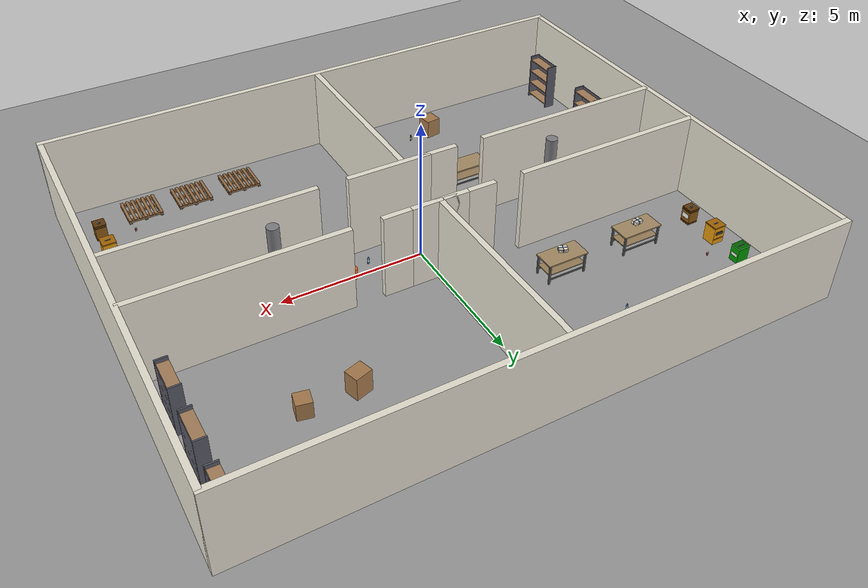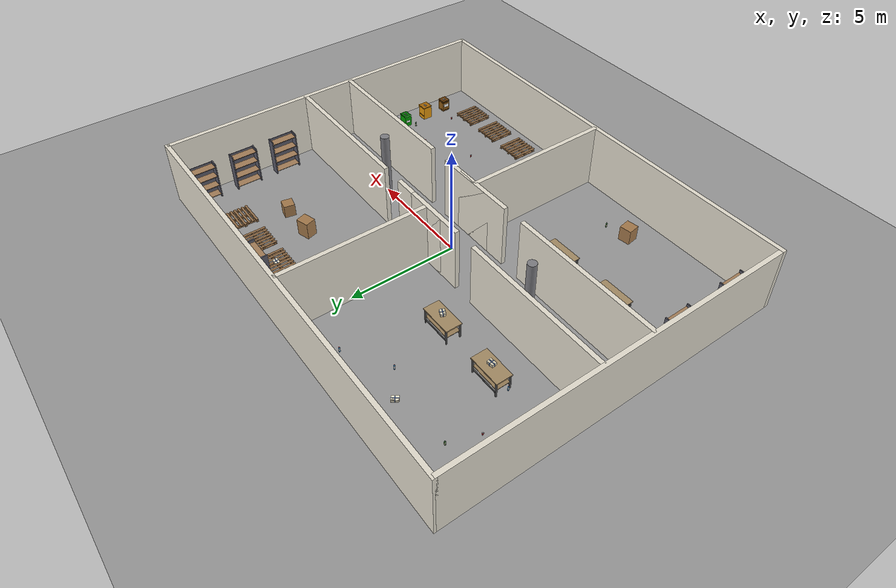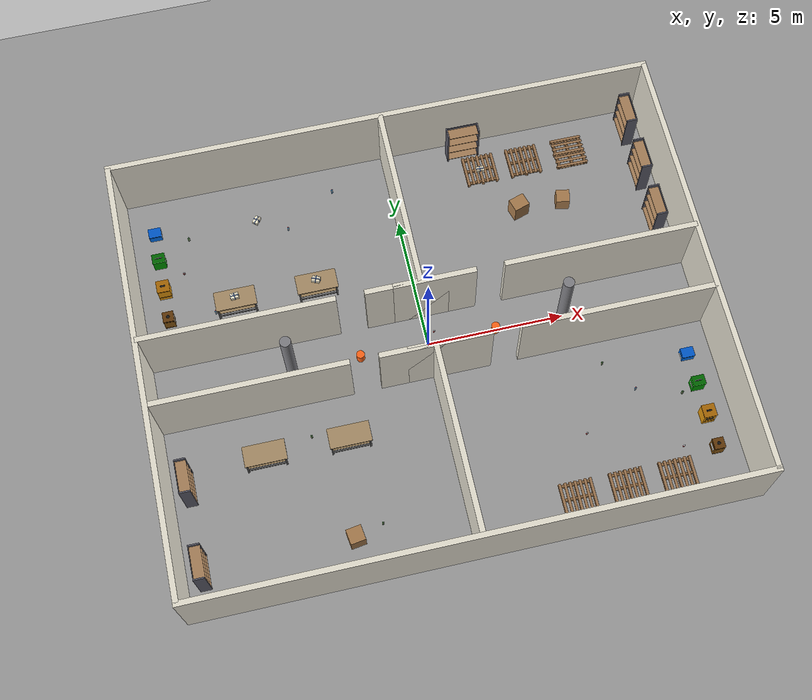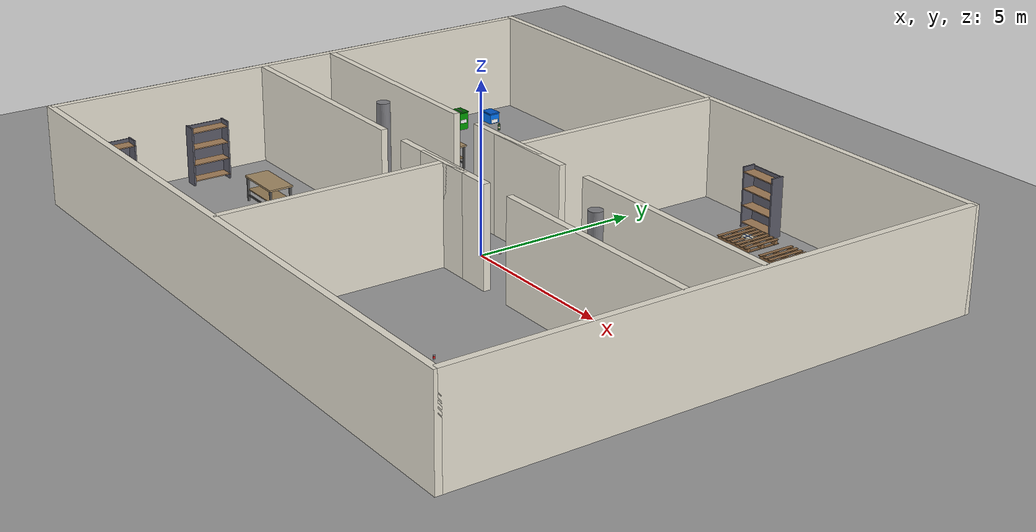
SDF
<sdf version="1.8">
 <world name="facility">
  <gravity>0 0 -9.81</gravity>
  <physics name="default_physics" type="ode">
   <max_step_size>0.001</max_step_size>
   <real_time_factor>1.0</real_time_factor>
   <real_time_update_rate>1000</real_time_update_rate>
   <ode><solver><type>quick</type><iters>50</iters></solver></ode>
  </physics>
  <plugin filename="gz-sim-physics-system" name="gz::sim::systems::Physics"/>
  <plugin filename="gz-sim-scene-broadcaster-system" name="gz::sim::systems::SceneBroadcaster"/>
  <plugin filename="gz-sim-user-commands-system" name="gz::sim::systems::UserCommands"/>
  <plugin filename="gz-sim-sensors-system" name="gz::sim::systems::Sensors">
   <render_engine>ogre2</render_engine>
  </plugin>
  <plugin filename="gz-sim-contact-system" name="gz::sim::systems::Contact"/>
  <scene><ambient>0.5 0.5 0.5 1</ambient><background>0.7 0.8 0.9 1</background><shadows>true</shadows></scene>
  <light type="directional" name="sun">
   <pose>0 0 15 0 0 0</pose>
   <diffuse>0.9 0.9 0.9 1</diffuse>
   <specular>0.2 0.2 0.2 1</specular>
   <direction>-0.4 0.2 -0.9</direction>
  </light>
  <light type="point" name="ceiling_light_1">
   <pose>-6 -3 3.5 0 0 0</pose>
   <diffuse>0.7 0.7 0.65 1</diffuse>
   <specular>0.1 0.1 0.1 1</specular>
   <attenuation>
    <range>10</range>
    <linear>0.1</linear>
    <constant>0.4</constant>
    <quadratic>0.01</quadratic>
   </attenuation>
  </light>
  <light type="point" name="ceiling_light_2">
   <pose>6 -3 3.5 0 0 0</pose>
   <diffuse>0.7 0.7 0.65 1</diffuse>
   <specular>0.1 0.1 0.1 1</specular>
   <attenuation>
    <range>10</range>
    <linear>0.1</linear>
    <constant>0.4</constant>
    <quadratic>0.01</quadratic>
   </attenuation>
  </light>
  <light type="point" name="ceiling_light_3">
   <pose>0 5 3.5 0 0 0</pose>
   <diffuse>0.7 0.7 0.65 1</diffuse>
   <specular>0.1 0.1 0.1 1</specular>
   <attenuation>
    <range>10</range>
    <linear>0.1</linear>
    <constant>0.4</constant>
    <quadratic>0.01</quadratic>
   </attenuation>
  </light>
  <model name="ground_plane">
   <static>true</static>
   <link name="link">
    <collision name="collision">
     <geometry><plane><normal>0 0 1</normal><size>100 100</size></plane></geometry>
     <surface><friction><ode><mu>0.9</mu><mu2>0.9</mu2></ode></friction></surface>
    </collision>
    <visual name="visual">
     <geometry><plane><normal>0 0 1</normal><size>100 100</size></plane></geometry>
     <material>
      <ambient>0.55 0.55 0.55 1</ambient>
      <diffuse>0.6 0.6 0.6 1</diffuse>
      <specular>0.1 0.1 0.1 1</specular>
     </material>
    </visual>
   </link>
  </model>
  <model name="wall_north">
   <static>true</static>
   <pose>0 8 1.5 0 0 0</pose>
   <link name="link">
    <collision name="collision"><geometry><box><size>20.2 0.2 3.0</size></box></geometry></collision>
    <visual name="visual">
     <geometry><box><size>20.2 0.2 3.0</size></box></geometry>
     <material><ambient>0.85 0.83 0.78 1</ambient><diffuse>0.9 0.88 0.82 1</diffuse></material>
    </visual>
   </link>
  </model>
  <model name="wall_south">
   <static>true</static>
   <pose>0 -8 1.5 0 0 0</pose>
   <link name="link">
    <collision name="collision"><geometry><box><size>20.2 0.2 3.0</size></box></geometry></collision>
    <visual name="visual">
     <geometry><box><size>20.2 0.2 3.0</size></box></geometry>
     <material><ambient>0.85 0.83 0.78 1</ambient><diffuse>0.9 0.88 0.82 1</diffuse></material>
    </visual>
   </link>
  </model>
  <model name="wall_east">
   <static>true</static>
   <pose>10 0 1.5 0 0 0</pose>
   <link name="link">
    <collision name="collision"><geometry><box><size>0.2 16.0 3.0</size></box></geometry></collision>
    <visual name="visual">
     <geometry><box><size>0.2 16.0 3.0</size></box></geometry>
     <material><ambient>0.85 0.83 0.78 1</ambient><diffuse>0.9 0.88 0.82 1</diffuse></material>
    </visual>
   </link>
  </model>
  <model name="wall_west">
   <static>true</static>
   <pose>-10 0 1.5 0 0 0</pose>
   <link name="link">
    <collision name="collision"><geometry><box><size>0.2 16.0 3.0</size></box></geometry></collision>
    <visual name="visual">
     <geometry><box><size>0.2 16.0 3.0</size></box></geometry>
     <material><ambient>0.85 0.83 0.78 1</ambient><diffuse>0.9 0.88 0.82 1</diffuse></material>
    </visual>
   </link>
  </model>
  <model name="wall_interior_north">
   <static>true</static>
   <pose>0 4.6 1.5 0 0 0</pose>
   <link name="link">
    <collision name="collision"><geometry><box><size>0.2 6.8 3.0</size></box></geometry></collision>
    <visual name="visual">
     <geometry><box><size>0.2 6.8 3.0</size></box></geometry>
     <material><ambient>0.85 0.83 0.78 1</ambient><diffuse>0.9 0.88 0.82 1</diffuse></material>
    </visual>
   </link>
  </model>
  <model name="wall_interior_south">
   <static>true</static>
   <pose>0 -4.6 1.5 0 0 0</pose>
   <link name="link">
    <collision name="collision"><geometry><box><size>0.2 6.8 3.0</size></box></geometry></collision>
    <visual name="visual">
     <geometry><box><size>0.2 6.8 3.0</size></box></geometry>
     <material><ambient>0.85 0.83 0.78 1</ambient><diffuse>0.9 0.88 0.82 1</diffuse></material>
    </visual>
   </link>
  </model>
  <model name="wall_hallway_nw_a">
   <static>true</static>
   <pose>-6.5 1.2 1.5 0 0 0</pose>
   <link name="link">
    <collision name="collision"><geometry><box><size>7.0 0.2 3.0</size></box></geometry></collision>
    <visual name="visual">
     <geometry><box><size>7.0 0.2 3.0</size></box></geometry>
     <material><ambient>0.85 0.83 0.78 1</ambient><diffuse>0.9 0.88 0.82 1</diffuse></material>
    </visual>
   </link>
  </model>
  <model name="wall_hallway_nw_b">
   <static>true</static>
   <pose>-0.5 1.2 1.5 0 0 0</pose>
   <link name="link">
    <collision name="collision"><geometry><box><size>3.0 0.2 3.0</size></box></geometry></collision>
    <visual name="visual">
     <geometry><box><size>3.0 0.2 3.0</size></box></geometry>
     <material><ambient>0.85 0.83 0.78 1</ambient><diffuse>0.9 0.88 0.82 1</diffuse></material>
    </visual>
   </link>
  </model>
  <model name="wall_hallway_ne_a">
   <static>true</static>
   <pose>0.5 1.2 1.5 0 0 0</pose>
   <link name="link">
    <collision name="collision"><geometry><box><size>3.0 0.2 3.0</size></box></geometry></collision>
    <visual name="visual">
     <geometry><box><size>3.0 0.2 3.0</size></box></geometry>
     <material><ambient>0.85 0.83 0.78 1</ambient><diffuse>0.9 0.88 0.82 1</diffuse></material>
    </visual>
   </link>
  </model>
  <model name="wall_hallway_ne_b">
   <static>true</static>
   <pose>6.5 1.2 1.5 0 0 0</pose>
   <link name="link">
    <collision name="collision"><geometry><box><size>7.0 0.2 3.0</size></box></geometry></collision>
    <visual name="visual">
     <geometry><box><size>7.0 0.2 3.0</size></box></geometry>
     <material><ambient>0.85 0.83 0.78 1</ambient><diffuse>0.9 0.88 0.82 1</diffuse></material>
    </visual>
   </link>
  </model>
  <model name="wall_hallway_sw_a">
   <static>true</static>
   <pose>-6.5 -1.2 1.5 0 0 0</pose>
   <link name="link">
    <collision name="collision"><geometry><box><size>7.0 0.2 3.0</size></box></geometry></collision>
    <visual name="visual">
     <geometry><box><size>7.0 0.2 3.0</size></box></geometry>
     <material><ambient>0.85 0.83 0.78 1</ambient><diffuse>0.9 0.88 0.82 1</diffuse></material>
    </visual>
   </link>
  </model>
  <model name="wall_hallway_sw_b">
   <static>true</static>
   <pose>-0.5 -1.2 1.5 0 0 0</pose>
   <link name="link">
    <collision name="collision"><geometry><box><size>3.0 0.2 3.0</size></box></geometry></collision>
    <visual name="visual">
     <geometry><box><size>3.0 0.2 3.0</size></box></geometry>
     <material><ambient>0.85 0.83 0.78 1</ambient><diffuse>0.9 0.88 0.82 1</diffuse></material>
    </visual>
   </link>
  </model>
  <model name="wall_hallway_se_a">
   <static>true</static>
   <pose>0.5 -1.2 1.5 0 0 0</pose>
   <link name="link">
    <collision name="collision"><geometry><box><size>3.0 0.2 3.0</size></box></geometry></collision>
    <visual name="visual">
     <geometry><box><size>3.0 0.2 3.0</size></box></geometry>
     <material><ambient>0.85 0.83 0.78 1</ambient><diffuse>0.9 0.88 0.82 1</diffuse></material>
    </visual>
   </link>
  </model>
  <model name="wall_hallway_se_b">
   <static>true</static>
   <pose>6.5 -1.2 1.5 0 0 0</pose>
   <link name="link">
    <collision name="collision"><geometry><box><size>7.0 0.2 3.0</size></box></geometry></collision>
    <visual name="visual">
     <geometry><box><size>7.0 0.2 3.0</size></box></geometry>
     <material><ambient>0.85 0.83 0.78 1</ambient><diffuse>0.9 0.88 0.82 1</diffuse></material>
    </visual>
   </link>
  </model>
  <include><name>shelf_ne_1</name><pose>9.3 3.0 0 0 0 1.5708</pose><uri>model://industrial_shelf</uri></include>
  <include><name>shelf_ne_2</name><pose>9.3 5.0 0 0 0 1.5708</pose><uri>model://industrial_shelf</uri></include>
  <include><name>shelf_ne_3</name><pose>9.3 7.0 0 0 0 1.5708</pose><uri>model://industrial_shelf</uri></include>
  <include><name>shelf_ne_4</name><pose>3.0 7.4 0 0 0 3.1416</pose><uri>model://industrial_shelf</uri></include>
  <include>
   <name>shelf_sw_1</name>
   <pose>-9.3 -3.5 0 0 0 -1.5708</pose>
   <uri>model://industrial_shelf</uri>
  </include>
  <include>
   <name>shelf_sw_2</name>
   <pose>-9.3 -6.5 0 0 0 -1.5708</pose>
   <uri>model://industrial_shelf</uri>
  </include>
  <include><name>pallet_storage_1</name><pose>3.5 6.5 0.075 0 0 0</pose><uri>model://pallet</uri></include>
  <include><name>pallet_storage_2</name><pose>5.2 6.5 0.075 0 0 0</pose><uri>model://pallet</uri></include>
  <include><name>pallet_storage_3</name><pose>7.0 6.5 0.075 0 0 1.5708</pose><uri>model://pallet</uri></include>
  <include><name>pallet_dock_1</name><pose>3.8 -6.8 0.075 0 0 0</pose><uri>model://pallet</uri></include>
  <include><name>pallet_dock_2</name><pose>5.6 -6.8 0.075 0 0 0</pose><uri>model://pallet</uri></include>
  <include><name>pallet_dock_3</name><pose>7.4 -6.8 0.075 0 0 0</pose><uri>model://pallet</uri></include>
  <include><name>work_table_sorting_1</name><pose>-6.5 3.0 0 0 0 0</pose><uri>model://work_table</uri></include>
  <include><name>work_table_sorting_2</name><pose>-3.5 3.0 0 0 0 0</pose><uri>model://work_table</uri></include>
  <include>
   <name>work_table_processing_1</name>
   <pose>-6.5 -3.0 0 0 0 0</pose>
   <uri>model://work_table</uri>
  </include>
  <include>
   <name>work_table_processing_2</name>
   <pose>-3.5 -3.0 0 0 0 0</pose>
   <uri>model://work_table</uri>
  </include>
  <include><name>plastic_bin_sorting</name><pose>-9.0 6.5 0 0 0 0</pose><uri>model://plastic_bin</uri></include>
  <include><name>paper_bin_sorting</name><pose>-9.0 5.3 0 0 0 0</pose><uri>model://paper_bin</uri></include>
  <include><name>metal_bin_sorting</name><pose>-9.0 4.1 0 0 0 0</pose><uri>model://metal_bin</uri></include>
  <include><name>glass_bin_sorting</name><pose>-9.0 2.9 0 0 0 0</pose><uri>model://glass_bin</uri></include>
  <include>
   <name>plastic_bin_dock</name>
   <pose>9.0 -2.5 0 0 0 3.14159</pose>
   <uri>model://plastic_bin</uri>
  </include>
  <include><name>paper_bin_dock</name><pose>9.0 -3.7 0 0 0 3.14159</pose><uri>model://paper_bin</uri></include>
  <include><name>metal_bin_dock</name><pose>9.0 -4.9 0 0 0 3.14159</pose><uri>model://metal_bin</uri></include>
  <include><name>glass_bin_dock</name><pose>9.0 -6.1 0 0 0 3.14159</pose><uri>model://glass_bin</uri></include>
  <model name="box_stack_1">
   <static>true</static>
   <pose>4.5 4.5 0.4 0 0 0.3</pose>
   <link name="link">
    <collision name="collision"><geometry><box><size>0.6 0.5 0.8</size></box></geometry></collision>
    <visual name="visual">
     <geometry><box><size>0.6 0.5 0.8</size></box></geometry>
     <material><ambient>0.55 0.4 0.25 1</ambient><diffuse>0.65 0.48 0.3 1</diffuse></material>
    </visual>
   </link>
  </model>
  <model name="box_stack_2">
   <static>true</static>
   <pose>6.2 4.5 0.3 0 0 -0.2</pose>
   <link name="link">
    <collision name="collision"><geometry><box><size>0.5 0.5 0.6</size></box></geometry></collision>
    <visual name="visual">
     <geometry><box><size>0.5 0.5 0.6</size></box></geometry>
     <material><ambient>0.55 0.4 0.25 1</ambient><diffuse>0.65 0.48 0.3 1</diffuse></material>
    </visual>
   </link>
  </model>
  <model name="box_stack_3">
   <static>true</static>
   <pose>-4.0 -6.5 0.35 0 0 0.15</pose>
   <link name="link">
    <collision name="collision"><geometry><box><size>0.55 0.55 0.7</size></box></geometry></collision>
    <visual name="visual">
     <geometry><box><size>0.55 0.55 0.7</size></box></geometry>
     <material><ambient>0.55 0.4 0.25 1</ambient><diffuse>0.65 0.48 0.3 1</diffuse></material>
    </visual>
   </link>
  </model>
  <model name="traffic_cone_1">
   <static>true</static>
   <pose>-2.5 0 0.2 0 0 0</pose>
   <link name="link">
    <collision name="collision">
     <geometry><cylinder><radius>0.15</radius><length>0.4</length></cylinder></geometry>
    </collision>
    <visual name="visual">
     <geometry><cylinder><radius>0.15</radius><length>0.4</length></cylinder></geometry>
     <material><ambient>0.9 0.35 0.05 1</ambient><diffuse>1.0 0.4 0.1 1</diffuse></material>
    </visual>
   </link>
  </model>
  <model name="traffic_cone_2">
   <static>true</static>
   <pose>2.5 0 0.2 0 0 0</pose>
   <link name="link">
    <collision name="collision">
     <geometry><cylinder><radius>0.15</radius><length>0.4</length></cylinder></geometry>
    </collision>
    <visual name="visual">
     <geometry><cylinder><radius>0.15</radius><length>0.4</length></cylinder></geometry>
     <material><ambient>0.9 0.35 0.05 1</ambient><diffuse>1.0 0.4 0.1 1</diffuse></material>
    </visual>
   </link>
  </model>
  <model name="support_pillar_1">
   <static>true</static>
   <pose>-5 0 1.5 0 0 0</pose>
   <link name="link">
    <collision name="collision">
     <geometry><cylinder><radius>0.2</radius><length>3.0</length></cylinder></geometry>
    </collision>
    <visual name="visual">
     <geometry><cylinder><radius>0.2</radius><length>3.0</length></cylinder></geometry>
     <material><ambient>0.4 0.4 0.42 1</ambient><diffuse>0.5 0.5 0.52 1</diffuse></material>
    </visual>
   </link>
  </model>
  <model name="support_pillar_2">
   <static>true</static>
   <pose>5 0 1.5 0 0 0</pose>
   <link name="link">
    <collision name="collision">
     <geometry><cylinder><radius>0.2</radius><length>3.0</length></cylinder></geometry>
    </collision>
    <visual name="visual">
     <geometry><cylinder><radius>0.2</radius><length>3.0</length></cylinder></geometry>
     <material><ambient>0.4 0.4 0.42 1</ambient><diffuse>0.5 0.5 0.52 1</diffuse></material>
    </visual>
   </link>
  </model>
  <include>
   <name>plastic_bottle_1</name>
   <pose>-7.3 2.85 0.12 0 0 0.5</pose>
   <uri>model://plastic_bottle</uri>
  </include>
  <include>
   <name>plastic_bottle_2</name>
   <pose>-4.1 5.6 0.12 0 0 1.2</pose>
   <uri>model://plastic_bottle</uri>
  </include>
  <include>
   <name>plastic_bottle_3</name>
   <pose>-2.2 6.8 0.12 0 0 -0.3</pose>
   <uri>model://plastic_bottle</uri>
  </include>
  <include>
   <name>plastic_bottle_4</name>
   <pose>1.8 -0.3 0.12 0 0 2.1</pose>
   <uri>model://plastic_bottle</uri>
  </include>
  <include>
   <name>plastic_bottle_5</name>
   <pose>6.8 -3.4 0.12 0 0 0.8</pose>
   <uri>model://plastic_bottle</uri>
  </include>
  <include>
   <name>paper_bundle_1</name>
   <pose>-6.5 3.0 0.95 0 0 0.1</pose>
   <uri>model://paper_bundle</uri>
  </include>
  <include>
   <name>paper_bundle_2</name>
   <pose>-3.5 3.0 0.95 0 0 -0.4</pose>
   <uri>model://paper_bundle</uri>
  </include>
  <include>
   <name>paper_bundle_3</name>
   <pose>-5.2 6.3 0.08 0 0 0.9</pose>
   <uri>model://paper_bundle</uri>
  </include>
  <include><name>paper_bundle_4</name><pose>3.5 6.5 0.18 0 0 0.0</pose><uri>model://paper_bundle</uri></include>
  <include><name>metal_can_1</name><pose>-8.2 4.7 0.06 0 0 0.6</pose><uri>model://metal_can</uri></include>
  <include><name>metal_can_2</name><pose>-3.8 2.4 0.06 0 0 -1.1</pose><uri>model://metal_can</uri></include>
  <include><name>metal_can_3</name><pose>0.3 0.4 0.06 0 0 1.9</pose><uri>model://metal_can</uri></include>
  <include><name>metal_can_4</name><pose>4.7 -4.6 0.06 0 0 0.3</pose><uri>model://metal_can</uri></include>
  <include><name>metal_can_5</name><pose>7.9 -5.8 0.06 0 0 -0.7</pose><uri>model://metal_can</uri></include>
  <include>
   <name>glass_bottle_1</name>
   <pose>-7.8 6.0 0.13 0 0 0.4</pose>
   <uri>model://glass_bottle</uri>
  </include>
  <include>
   <name>glass_bottle_2</name>
   <pose>-4.8 -2.6 0.13 0 0 -0.5</pose>
   <uri>model://glass_bottle</uri>
  </include>
  <include>
   <name>glass_bottle_3</name>
   <pose>-3.0 -6.2 0.13 0 0 1.4</pose>
   <uri>model://glass_bottle</uri>
  </include>
  <include>
   <name>glass_bottle_4</name>
   <pose>5.9 -2.2 0.13 0 0 0.2</pose>
   <uri>model://glass_bottle</uri>
  </include>
  <include>
   <name>glass_bottle_5</name>
   <pose>8.4 -3.9 0.13 0 0 -1.6</pose>
   <uri>model://glass_bottle</uri>
  </include>
  <model name="render_confirm_cam">
   <static>true</static>
   <pose>3 0 2 0 0.34 3.14159</pose>
   <link name="link">
    <sensor type="camera" name="render_confirm_camera">
     <topic>/render_confirm/camera</topic>
     <always_on>1</always_on>
     <update_rate>30</update_rate>
     <camera>
      <horizontal_fov>1.0472</horizontal_fov>
      <image><width>800</width><height>600</height><format>R8G8B8</format></image>
      <clip><near>0.05</near><far>100</far></clip>
     </camera>
    </sensor>
   </link>
  </model>
 </world>
</sdf>

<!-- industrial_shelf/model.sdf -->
<sdf version="1.8">
  <model name="industrial_shelf">
    <static>true</static>
    <link name="link">

      <!-- Left vertical post -->
      <visual name="post_left">
        <pose>-0.58 0 0.9 0 0 0</pose>
        <geometry><box><size>0.05 0.4 1.8</size></box></geometry>
        <material>
          <ambient>0.25 0.25 0.28 1</ambient>
          <diffuse>0.35 0.35 0.4 1</diffuse>
          <specular>0.4 0.4 0.45 1</specular>
        </material>
      </visual>
      <collision name="post_left_col">
        <pose>-0.58 0 0.9 0 0 0</pose>
        <geometry><box><size>0.05 0.4 1.8</size></box></geometry>
      </collision>

      <!-- Right vertical post -->
      <visual name="post_right">
        <pose>0.58 0 0.9 0 0 0</pose>
        <geometry><box><size>0.05 0.4 1.8</size></box></geometry>
        <material>
          <ambient>0.25 0.25 0.28 1</ambient>
          <diffuse>0.35 0.35 0.4 1</diffuse>
          <specular>0.4 0.4 0.45 1</specular>
        </material>
      </visual>
      <collision name="post_right_col">
        <pose>0.58 0 0.9 0 0 0</pose>
        <geometry><box><size>0.05 0.4 1.8</size></box></geometry>
      </collision>

      <!-- Shelf 1 (bottom) -->
      <visual name="shelf_1">
        <pose>0 0 0.15 0 0 0</pose>
        <geometry><box><size>1.2 0.4 0.03</size></box></geometry>
        <material>
          <ambient>0.5 0.4 0.3 1</ambient>
          <diffuse>0.65 0.5 0.35 1</diffuse>
        </material>
      </visual>
      <collision name="shelf_1_col">
        <pose>0 0 0.15 0 0 0</pose>
        <geometry><box><size>1.2 0.4 0.03</size></box></geometry>
      </collision>

      <!-- Shelf 2 -->
      <visual name="shelf_2">
        <pose>0 0 0.65 0 0 0</pose>
        <geometry><box><size>1.2 0.4 0.03</size></box></geometry>
        <material>
          <ambient>0.5 0.4 0.3 1</ambient>
          <diffuse>0.65 0.5 0.35 1</diffuse>
        </material>
      </visual>
      <collision name="shelf_2_col">
        <pose>0 0 0.65 0 0 0</pose>
        <geometry><box><size>1.2 0.4 0.03</size></box></geometry>
      </collision>

      <!-- Shelf 3 -->
      <visual name="shelf_3">
        <pose>0 0 1.15 0 0 0</pose>
        <geometry><box><size>1.2 0.4 0.03</size></box></geometry>
        <material>
          <ambient>0.5 0.4 0.3 1</ambient>
          <diffuse>0.65 0.5 0.35 1</diffuse>
        </material>
      </visual>
      <collision name="shelf_3_col">
        <pose>0 0 1.15 0 0 0</pose>
        <geometry><box><size>1.2 0.4 0.03</size></box></geometry>
      </collision>

      <!-- Shelf 4 (top) -->
      <visual name="shelf_4">
        <pose>0 0 1.65 0 0 0</pose>
        <geometry><box><size>1.2 0.4 0.03</size></box></geometry>
        <material>
          <ambient>0.5 0.4 0.3 1</ambient>
          <diffuse>0.65 0.5 0.35 1</diffuse>
        </material>
      </visual>
      <collision name="shelf_4_col">
        <pose>0 0 1.65 0 0 0</pose>
        <geometry><box><size>1.2 0.4 0.03</size></box></geometry>
      </collision>

      <!-- Back cross brace -->
      <visual name="back_brace">
        <pose>0 -0.19 0.9 0 0 0</pose>
        <geometry><box><size>1.16 0.02 1.75</size></box></geometry>
        <material>
          <ambient>0.25 0.25 0.28 1</ambient>
          <diffuse>0.35 0.35 0.4 1</diffuse>
        </material>
      </visual>
      <collision name="back_brace_col">
        <pose>0 -0.19 0.9 0 0 0</pose>
        <geometry><box><size>1.16 0.02 1.75</size></box></geometry>
      </collision>

      <!-- Inertial (static, but required) -->
      <inertial>
        <mass>30.0</mass>
        <inertia>
          <ixx>10.0</ixx><iyy>10.0</iyy><izz>5.0</izz>
          <ixy>0</ixy><ixz>0</ixz><iyz>0</iyz>
        </inertia>
      </inertial>

    </link>
  </model>
</sdf>

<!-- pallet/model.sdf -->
<sdf version="1.8">
  <model name="pallet">
    <static>true</static>
    <link name="link">
      <inertial>
        <mass>20.0</mass>
        <inertia>
          <ixx>1.2</ixx><iyy>1.5</iyy><izz>2.5</izz>
          <ixy>0</ixy><ixz>0</ixz><iyz>0</iyz>
        </inertia>
      </inertial>

      <!-- Top deck boards (7 planks along X) -->
      <visual name="top_1"><pose>-0.55 0 0.13 0 0 0</pose><geometry><box><size>0.1 1.2 0.02</size></box></geometry><material><ambient>0.55 0.4 0.25 1</ambient><diffuse>0.6 0.45 0.3 1</diffuse></material></visual>
      <visual name="top_2"><pose>-0.36 0 0.13 0 0 0</pose><geometry><box><size>0.1 1.2 0.02</size></box></geometry><material><ambient>0.55 0.4 0.25 1</ambient><diffuse>0.6 0.45 0.3 1</diffuse></material></visual>
      <visual name="top_3"><pose>-0.18 0 0.13 0 0 0</pose><geometry><box><size>0.1 1.2 0.02</size></box></geometry><material><ambient>0.55 0.4 0.25 1</ambient><diffuse>0.6 0.45 0.3 1</diffuse></material></visual>
      <visual name="top_4"><pose>0 0 0.13 0 0 0</pose><geometry><box><size>0.1 1.2 0.02</size></box></geometry><material><ambient>0.55 0.4 0.25 1</ambient><diffuse>0.6 0.45 0.3 1</diffuse></material></visual>
      <visual name="top_5"><pose>0.18 0 0.13 0 0 0</pose><geometry><box><size>0.1 1.2 0.02</size></box></geometry><material><ambient>0.55 0.4 0.25 1</ambient><diffuse>0.6 0.45 0.3 1</diffuse></material></visual>
      <visual name="top_6"><pose>0.36 0 0.13 0 0 0</pose><geometry><box><size>0.1 1.2 0.02</size></box></geometry><material><ambient>0.55 0.4 0.25 1</ambient><diffuse>0.6 0.45 0.3 1</diffuse></material></visual>
      <visual name="top_7"><pose>0.55 0 0.13 0 0 0</pose><geometry><box><size>0.1 1.2 0.02</size></box></geometry><material><ambient>0.55 0.4 0.25 1</ambient><diffuse>0.6 0.45 0.3 1</diffuse></material></visual>

      <!-- Cross stringers (3 blocks along Y) -->
      <visual name="stringer_l"><pose>0 -0.5 0.07 0 0 0</pose><geometry><box><size>1.2 0.1 0.1</size></box></geometry><material><ambient>0.5 0.35 0.2 1</ambient><diffuse>0.55 0.4 0.25 1</diffuse></material></visual>
      <visual name="stringer_c"><pose>0 0 0.07 0 0 0</pose><geometry><box><size>1.2 0.1 0.1</size></box></geometry><material><ambient>0.5 0.35 0.2 1</ambient><diffuse>0.55 0.4 0.25 1</diffuse></material></visual>
      <visual name="stringer_r"><pose>0 0.5 0.07 0 0 0</pose><geometry><box><size>1.2 0.1 0.1</size></box></geometry><material><ambient>0.5 0.35 0.2 1</ambient><diffuse>0.55 0.4 0.25 1</diffuse></material></visual>

      <!-- Bottom boards -->
      <visual name="bot_1"><pose>-0.55 0 0.01 0 0 0</pose><geometry><box><size>0.1 1.2 0.02</size></box></geometry><material><ambient>0.5 0.35 0.2 1</ambient><diffuse>0.55 0.4 0.25 1</diffuse></material></visual>
      <visual name="bot_2"><pose>0 0 0.01 0 0 0</pose><geometry><box><size>0.1 1.2 0.02</size></box></geometry><material><ambient>0.5 0.35 0.2 1</ambient><diffuse>0.55 0.4 0.25 1</diffuse></material></visual>
      <visual name="bot_3"><pose>0.55 0 0.01 0 0 0</pose><geometry><box><size>0.1 1.2 0.02</size></box></geometry><material><ambient>0.5 0.35 0.2 1</ambient><diffuse>0.55 0.4 0.25 1</diffuse></material></visual>

      <!-- Simplified collision: single box enclosing the pallet volume -->
      <collision name="collision">
        <pose>0 0 0.07 0 0 0</pose>
        <geometry><box><size>1.2 1.2 0.14</size></box></geometry>
        <surface><friction><ode><mu>0.9</mu><mu2>0.9</mu2></ode></friction></surface>
      </collision>
    </link>
  </model>
</sdf>

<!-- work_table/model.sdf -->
<sdf version="1.8">
  <model name="work_table">
    <static>true</static>
    <link name="link">

      <!-- Tabletop -->
      <visual name="tabletop_visual">
        <pose>0 0 0.75 0 0 0</pose>
        <geometry>
          <box><size>1.5 0.75 0.05</size></box>
        </geometry>
        <material>
          <ambient>0.6 0.5 0.35 1</ambient>
          <diffuse>0.65 0.55 0.4 1</diffuse>
          <specular>0.1 0.1 0.1 1</specular>
        </material>
      </visual>
      <collision name="tabletop_collision">
        <pose>0 0 0.75 0 0 0</pose>
        <geometry>
          <box><size>1.5 0.75 0.05</size></box>
        </geometry>
      </collision>

      <!-- Leg front-left -->
      <visual name="leg_fl_visual">
        <pose>-0.68 -0.32 0.36 0 0 0</pose>
        <geometry>
          <box><size>0.06 0.06 0.72</size></box>
        </geometry>
        <material>
          <ambient>0.3 0.3 0.3 1</ambient>
          <diffuse>0.35 0.35 0.35 1</diffuse>
        </material>
      </visual>
      <collision name="leg_fl_collision">
        <pose>-0.68 -0.32 0.36 0 0 0</pose>
        <geometry>
          <box><size>0.06 0.06 0.72</size></box>
        </geometry>
      </collision>

      <!-- Leg front-right -->
      <visual name="leg_fr_visual">
        <pose>0.68 -0.32 0.36 0 0 0</pose>
        <geometry>
          <box><size>0.06 0.06 0.72</size></box>
        </geometry>
        <material>
          <ambient>0.3 0.3 0.3 1</ambient>
          <diffuse>0.35 0.35 0.35 1</diffuse>
        </material>
      </visual>
      <collision name="leg_fr_collision">
        <pose>0.68 -0.32 0.36 0 0 0</pose>
        <geometry>
          <box><size>0.06 0.06 0.72</size></box>
        </geometry>
      </collision>

      <!-- Leg rear-left -->
      <visual name="leg_rl_visual">
        <pose>-0.68 0.32 0.36 0 0 0</pose>
        <geometry>
          <box><size>0.06 0.06 0.72</size></box>
        </geometry>
        <material>
          <ambient>0.3 0.3 0.3 1</ambient>
          <diffuse>0.35 0.35 0.35 1</diffuse>
        </material>
      </visual>
      <collision name="leg_rl_collision">
        <pose>-0.68 0.32 0.36 0 0 0</pose>
        <geometry>
          <box><size>0.06 0.06 0.72</size></box>
        </geometry>
      </collision>

      <!-- Leg rear-right -->
      <visual name="leg_rr_visual">
        <pose>0.68 0.32 0.36 0 0 0</pose>
        <geometry>
          <box><size>0.06 0.06 0.72</size></box>
        </geometry>
        <material>
          <ambient>0.3 0.3 0.3 1</ambient>
          <diffuse>0.35 0.35 0.35 1</diffuse>
        </material>
      </visual>
      <collision name="leg_rr_collision">
        <pose>0.68 0.32 0.36 0 0 0</pose>
        <geometry>
          <box><size>0.06 0.06 0.72</size></box>
        </geometry>
      </collision>

      <!-- Lower shelf -->
      <visual name="lower_shelf_visual">
        <pose>0 0 0.35 0 0 0</pose>
        <geometry>
          <box><size>1.38 0.63 0.03</size></box>
        </geometry>
        <material>
          <ambient>0.55 0.45 0.3 1</ambient>
          <diffuse>0.6 0.5 0.35 1</diffuse>
        </material>
      </visual>
      <collision name="lower_shelf_collision">
        <pose>0 0 0.35 0 0 0</pose>
        <geometry>
          <box><size>1.38 0.63 0.03</size></box>
        </geometry>
      </collision>

      <!-- Front cross-brace -->
      <visual name="brace_front_visual">
        <pose>0 -0.32 0.18 0 0 0</pose>
        <geometry>
          <box><size>1.38 0.04 0.04</size></box>
        </geometry>
        <material>
          <ambient>0.3 0.3 0.3 1</ambient>
          <diffuse>0.35 0.35 0.35 1</diffuse>
        </material>
      </visual>

      <!-- Rear cross-brace -->
      <visual name="brace_rear_visual">
        <pose>0 0.32 0.18 0 0 0</pose>
        <geometry>
          <box><size>1.38 0.04 0.04</size></box>
        </geometry>
        <material>
          <ambient>0.3 0.3 0.3 1</ambient>
          <diffuse>0.35 0.35 0.35 1</diffuse>
        </material>
      </visual>

    </link>
  </model>
</sdf>

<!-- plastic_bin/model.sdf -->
<sdf version="1.8">
  <model name="plastic_bin">
    <static>true</static>
    <link name="link">
      <!-- Bin body -->
      <collision name="body_collision">
        <geometry>
          <box><size>0.45 0.35 0.55</size></box>
        </geometry>
      </collision>
      <visual name="body_visual">
        <geometry>
          <box><size>0.45 0.35 0.55</size></box>
        </geometry>
        <material>
          <ambient>0.0 0.4 0.9 1</ambient>
          <diffuse>0.0 0.45 0.95 1</diffuse>
          <specular>0.1 0.1 0.1 1</specular>
        </material>
      </visual>
      <!-- Lid (slightly wider, sits on top) -->
      <collision name="lid_collision">
        <pose>0 0 0.3 0 0 0</pose>
        <geometry>
          <box><size>0.47 0.37 0.04</size></box>
        </geometry>
      </collision>
      <visual name="lid_visual">
        <pose>0 0 0.3 0 0 0</pose>
        <geometry>
          <box><size>0.47 0.37 0.04</size></box>
        </geometry>
        <material>
          <ambient>0.0 0.3 0.75 1</ambient>
          <diffuse>0.0 0.35 0.8 1</diffuse>
          <specular>0.1 0.1 0.1 1</specular>
        </material>
      </visual>
      <!-- Label strip -->
      <visual name="label_visual">
        <pose>0.226 0 0.05 0 0 0</pose>
        <geometry>
          <box><size>0.002 0.25 0.12</size></box>
        </geometry>
        <material>
          <ambient>1.0 1.0 1.0 1</ambient>
          <diffuse>1.0 1.0 1.0 1</diffuse>
        </material>
      </visual>
      <inertial>
        <mass>3.5</mass>
        <inertia>
          <ixx>0.18</ixx><ixy>0</ixy><ixz>0</ixz>
          <iyy>0.22</iyy><iyz>0</iyz>
          <izz>0.12</izz>
        </inertia>
      </inertial>
    </link>
  </model>
</sdf>

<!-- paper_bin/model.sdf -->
<sdf version="1.8">
  <model name="paper_bin">
    <static>true</static>
    <link name="link">
      <collision name="body_collision">
        <geometry>
          <box>
            <size>0.45 0.35 0.55</size>
          </box>
        </geometry>
        <surface>
          <friction>
            <ode>
              <mu>0.8</mu>
              <mu2>0.8</mu2>
            </ode>
          </friction>
        </surface>
      </collision>
      <!-- Main body -->
      <visual name="body_visual">
        <pose>0 0 0.275 0 0 0</pose>
        <geometry>
          <box>
            <size>0.45 0.35 0.55</size>
          </box>
        </geometry>
        <material>
          <ambient>0.0 0.5 0.0 1</ambient>
          <diffuse>0.0 0.6 0.0 1</diffuse>
          <specular>0.1 0.1 0.1 1</specular>
        </material>
      </visual>
      <!-- Lid -->
      <visual name="lid_visual">
        <pose>0 0 0.565 0 0 0</pose>
        <geometry>
          <box>
            <size>0.47 0.37 0.03</size>
          </box>
        </geometry>
        <material>
          <ambient>0.0 0.35 0.0 1</ambient>
          <diffuse>0.0 0.4 0.0 1</diffuse>
          <specular>0.1 0.1 0.1 1</specular>
        </material>
      </visual>
      <!-- Label strip -->
      <visual name="label_visual">
        <pose>0.226 0 0.275 0 0 0</pose>
        <geometry>
          <box>
            <size>0.002 0.25 0.12</size>
          </box>
        </geometry>
        <material>
          <ambient>0.9 0.9 0.9 1</ambient>
          <diffuse>0.95 0.95 0.95 1</diffuse>
          <specular>0.2 0.2 0.2 1</specular>
        </material>
      </visual>
      <!-- Slot opening on top -->
      <visual name="slot_visual">
        <pose>0 0 0.582 0 0 0</pose>
        <geometry>
          <box>
            <size>0.25 0.04 0.01</size>
          </box>
        </geometry>
        <material>
          <ambient>0.05 0.05 0.05 1</ambient>
          <diffuse>0.05 0.05 0.05 1</diffuse>
          <specular>0.0 0.0 0.0 1</specular>
        </material>
      </visual>
    </link>
  </model>
</sdf>

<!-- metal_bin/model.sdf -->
<sdf version="1.8">
  <model name="metal_bin">
    <static>true</static>
    <link name="link">
      <!-- Main bin body: yellow/orange for metal recycling -->
      <collision name="body_collision">
        <geometry>
          <box>
            <size>0.45 0.45 0.65</size>
          </box>
        </geometry>
        <surface>
          <friction>
            <ode>
              <mu>0.8</mu>
              <mu2>0.8</mu2>
            </ode>
          </friction>
        </surface>
      </collision>
      <visual name="body_visual">
        <pose>0 0 0.325 0 0 0</pose>
        <geometry>
          <box>
            <size>0.45 0.45 0.65</size>
          </box>
        </geometry>
        <material>
          <ambient>0.85 0.55 0.05 1</ambient>
          <diffuse>0.9 0.6 0.05 1</diffuse>
          <specular>0.3 0.2 0.02 1</specular>
        </material>
      </visual>

      <!-- Lid -->
      <collision name="lid_collision">
        <pose>0 0 0.66 0 0 0</pose>
        <geometry>
          <box>
            <size>0.47 0.47 0.04</size>
          </box>
        </geometry>
      </collision>
      <visual name="lid_visual">
        <pose>0 0 0.66 0 0 0</pose>
        <geometry>
          <box>
            <size>0.47 0.47 0.04</size>
          </box>
        </geometry>
        <material>
          <ambient>0.6 0.35 0.02 1</ambient>
          <diffuse>0.65 0.4 0.02 1</diffuse>
          <specular>0.2 0.1 0.01 1</specular>
        </material>
      </visual>

      <!-- Label strip: dark band with METAL text area -->
      <visual name="label_visual">
        <pose>0 0.228 0.42 0 0 0</pose>
        <geometry>
          <box>
            <size>0.3 0.005 0.12</size>
          </box>
        </geometry>
        <material>
          <ambient>0.15 0.15 0.15 1</ambient>
          <diffuse>0.2 0.2 0.2 1</diffuse>
          <specular>0.05 0.05 0.05 1</specular>
        </material>
      </visual>

      <!-- Slot opening on top for cans/metal items -->
      <visual name="slot_visual">
        <pose>0 0 0.682 0 0 0</pose>
        <geometry>
          <box>
            <size>0.18 0.06 0.005</size>
          </box>
        </geometry>
        <material>
          <ambient>0.05 0.05 0.05 1</ambient>
          <diffuse>0.08 0.08 0.08 1</diffuse>
          <specular>0.02 0.02 0.02 1</specular>
        </material>
      </visual>

      <!-- Reinforcement ribs on sides -->
      <visual name="rib_front_visual">
        <pose>0 0.226 0.2 0 0 0</pose>
        <geometry>
          <box>
            <size>0.43 0.005 0.04</size>
          </box>
        </geometry>
        <material>
          <ambient>0.6 0.35 0.02 1</ambient>
          <diffuse>0.65 0.4 0.02 1</diffuse>
          <specular>0.2 0.1 0.01 1</specular>
        </material>
      </visual>
      <visual name="rib_back_visual">
        <pose>0 -0.226 0.2 0 0 0</pose>
        <geometry>
          <box>
            <size>0.43 0.005 0.04</size>
          </box>
        </geometry>
        <material>
          <ambient>0.6 0.35 0.02 1</ambient>
          <diffuse>0.65 0.4 0.02 1</diffuse>
          <specular>0.2 0.1 0.01 1</specular>
        </material>
      </visual>

      <inertial>
        <mass>4.5</mass>
        <inertia>
          <ixx>0.22</ixx>
          <iyy>0.22</iyy>
          <izz>0.18</izz>
          <ixy>0</ixy>
          <ixz>0</ixz>
          <iyz>0</iyz>
        </inertia>
      </inertial>
    </link>
  </model>
</sdf>

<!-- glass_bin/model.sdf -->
<sdf version="1.8">
  <model name="glass_bin">
    <static>true</static>
    <link name="link">
      <inertial>
        <mass>3.5</mass>
        <inertia>
          <ixx>0.08</ixx><ixy>0</ixy><ixz>0</ixz>
          <iyy>0.08</iyy><iyz>0</iyz>
          <izz>0.05</izz>
        </inertia>
      </inertial>

      <!-- Main body -->
      <collision name="body_collision">
        <pose>0 0 0.28 0 0 0</pose>
        <geometry><box><size>0.38 0.38 0.56</size></box></geometry>
      </collision>
      <visual name="body_visual">
        <pose>0 0 0.28 0 0 0</pose>
        <geometry><box><size>0.38 0.38 0.56</size></box></geometry>
        <material>
          <ambient>0.45 0.28 0.05 1</ambient>
          <diffuse>0.55 0.35 0.08 1</diffuse>
          <specular>0.2 0.15 0.05 1</specular>
        </material>
      </visual>

      <!-- Lid -->
      <collision name="lid_collision">
        <pose>0 0 0.575 0 0 0</pose>
        <geometry><box><size>0.40 0.40 0.03</size></box></geometry>
      </collision>
      <visual name="lid_visual">
        <pose>0 0 0.575 0 0 0</pose>
        <geometry><box><size>0.40 0.40 0.03</size></box></geometry>
        <material>
          <ambient>0.30 0.18 0.03 1</ambient>
          <diffuse>0.38 0.22 0.04 1</diffuse>
          <specular>0.1 0.08 0.02 1</specular>
        </material>
      </visual>

      <!-- Circular opening on lid -->
      <visual name="opening_visual">
        <pose>0 0 0.592 0 0 0</pose>
        <geometry><cylinder><radius>0.06</radius><length>0.005</length></cylinder></geometry>
        <material>
          <ambient>0.05 0.05 0.05 1</ambient>
          <diffuse>0.08 0.08 0.08 1</diffuse>
        </material>
      </visual>

      <!-- Label strip -->
      <visual name="label_visual">
        <pose>0.192 0 0.30 0 0 0</pose>
        <geometry><box><size>0.005 0.28 0.18</size></box></geometry>
        <material>
          <ambient>0.9 0.9 0.9 1</ambient>
          <diffuse>0.95 0.95 0.95 1</diffuse>
        </material>
      </visual>

      <!-- Reinforcement band top -->
      <visual name="band_top_visual">
        <pose>0 0 0.50 0 0 0</pose>
        <geometry><box><size>0.385 0.385 0.025</size></box></geometry>
        <material>
          <ambient>0.30 0.18 0.03 1</ambient>
          <diffuse>0.38 0.22 0.04 1</diffuse>
        </material>
      </visual>

      <!-- Reinforcement band bottom -->
      <visual name="band_bottom_visual">
        <pose>0 0 0.06 0 0 0</pose>
        <geometry><box><size>0.385 0.385 0.025</size></box></geometry>
        <material>
          <ambient>0.30 0.18 0.03 1</ambient>
          <diffuse>0.38 0.22 0.04 1</diffuse>
        </material>
      </visual>

      <!-- Base -->
      <collision name="base_collision">
        <pose>0 0 0.02 0 0 0</pose>
        <geometry><box><size>0.36 0.36 0.04</size></box></geometry>
      </collision>
      <visual name="base_visual">
        <pose>0 0 0.02 0 0 0</pose>
        <geometry><box><size>0.36 0.36 0.04</size></box></geometry>
        <material>
          <ambient>0.20 0.12 0.02 1</ambient>
          <diffuse>0.25 0.15 0.03 1</diffuse>
        </material>
      </visual>
    </link>
  </model>
</sdf>

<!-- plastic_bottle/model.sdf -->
<sdf version="1.8">
  <model name="plastic_bottle">
    <static>false</static>
    <link name="link">
      <inertial>
        <mass>0.05</mass>
        <inertia>
          <ixx>0.000025</ixx>
          <ixy>0</ixy>
          <ixz>0</ixz>
          <iyy>0.000025</iyy>
          <iyz>0</iyz>
          <izz>0.000010</izz>
        </inertia>
      </inertial>

      <!-- Main bottle body -->
      <collision name="body_collision">
        <pose>0 0 0.11 0 0 0</pose>
        <geometry>
          <cylinder>
            <radius>0.035</radius>
            <length>0.18</length>
          </cylinder>
        </geometry>
        <surface>
          <friction>
            <ode>
              <mu>0.6</mu>
              <mu2>0.6</mu2>
            </ode>
          </friction>
        </surface>
      </collision>

      <!-- Bottle neck collision -->
      <collision name="neck_collision">
        <pose>0 0 0.215 0 0 0</pose>
        <geometry>
          <cylinder>
            <radius>0.015</radius>
            <length>0.05</length>
          </cylinder>
        </geometry>
      </collision>

      <!-- Main bottle body visual -->
      <visual name="body_visual">
        <pose>0 0 0.11 0 0 0</pose>
        <geometry>
          <cylinder>
            <radius>0.035</radius>
            <length>0.18</length>
          </cylinder>
        </geometry>
        <material>
          <ambient>0.2 0.6 0.9 0.7</ambient>
          <diffuse>0.2 0.6 0.9 0.7</diffuse>
          <specular>0.8 0.8 0.8 1.0</specular>
        </material>
      </visual>

      <!-- Bottle shoulder (taper) -->
      <visual name="shoulder_visual">
        <pose>0 0 0.205 0 0 0</pose>
        <geometry>
          <cylinder>
            <radius>0.025</radius>
            <length>0.02</length>
          </cylinder>
        </geometry>
        <material>
          <ambient>0.2 0.6 0.9 0.7</ambient>
          <diffuse>0.2 0.6 0.9 0.7</diffuse>
          <specular>0.8 0.8 0.8 1.0</specular>
        </material>
      </visual>

      <!-- Bottle neck visual -->
      <visual name="neck_visual">
        <pose>0 0 0.225 0 0 0</pose>
        <geometry>
          <cylinder>
            <radius>0.015</radius>
            <length>0.04</length>
          </cylinder>
        </geometry>
        <material>
          <ambient>0.2 0.6 0.9 0.7</ambient>
          <diffuse>0.2 0.6 0.9 0.7</diffuse>
          <specular>0.8 0.8 0.8 1.0</specular>
        </material>
      </visual>

      <!-- Bottle cap -->
      <visual name="cap_visual">
        <pose>0 0 0.25 0 0 0</pose>
        <geometry>
          <cylinder>
            <radius>0.017</radius>
            <length>0.015</length>
          </cylinder>
        </geometry>
        <material>
          <ambient>0.9 0.1 0.1 1.0</ambient>
          <diffuse>0.9 0.1 0.1 1.0</diffuse>
          <specular>0.3 0.3 0.3 1.0</specular>
        </material>
      </visual>

      <!-- Label strip -->
      <visual name="label_visual">
        <pose>0 0 0.11 0 0 0</pose>
        <geometry>
          <cylinder>
            <radius>0.0355</radius>
            <length>0.08</length>
          </cylinder>
        </geometry>
        <material>
          <ambient>0.95 0.95 0.95 1.0</ambient>
          <diffuse>0.95 0.95 0.95 1.0</diffuse>
          <specular>0.1 0.1 0.1 1.0</specular>
        </material>
      </visual>

      <!-- Bottom base -->
      <visual name="base_visual">
        <pose>0 0 0.01 0 0 0</pose>
        <geometry>
          <cylinder>
            <radius>0.033</radius>
            <length>0.02</length>
          </cylinder>
        </geometry>
        <material>
          <ambient>0.15 0.5 0.8 0.8</ambient>
          <diffuse>0.15 0.5 0.8 0.8</diffuse>
          <specular>0.5 0.5 0.5 1.0</specular>
        </material>
      </visual>
    </link>
  </model>
</sdf>

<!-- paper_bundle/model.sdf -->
<sdf version="1.8">
  <model name="paper_bundle">
    <static>false</static>
    <link name="link">
      <inertial>
        <mass>1.5</mass>
        <inertia>
          <ixx>0.0156</ixx>
          <ixy>0.0</ixy>
          <ixz>0.0</ixz>
          <iyy>0.0281</iyy>
          <iyz>0.0</iyz>
          <izz>0.0406</izz>
        </inertia>
      </inertial>

      <!-- Main paper stack body -->
      <collision name="collision">
        <geometry>
          <box>
            <size>0.30 0.22 0.12</size>
          </box>
        </geometry>
        <surface>
          <friction>
            <ode>
              <mu>0.7</mu>
              <mu2>0.6</mu2>
            </ode>
          </friction>
          <contact>
            <ode>
              <kp>1e5</kp>
              <kd>1.0</kd>
            </ode>
          </contact>
        </surface>
      </collision>

      <!-- Paper stack body visual -->
      <visual name="body_visual">
        <geometry>
          <box>
            <size>0.30 0.22 0.12</size>
          </box>
        </geometry>
        <material>
          <ambient>0.95 0.92 0.82 1</ambient>
          <diffuse>0.95 0.92 0.82 1</diffuse>
          <specular>0.05 0.05 0.05 1</specular>
        </material>
      </visual>

      <!-- Binding strap horizontal -->
      <visual name="strap_h_visual">
        <pose>0 0 0 0 0 0</pose>
        <geometry>
          <box>
            <size>0.32 0.02 0.13</size>
          </box>
        </geometry>
        <material>
          <ambient>0.2 0.4 0.8 1</ambient>
          <diffuse>0.2 0.4 0.8 1</diffuse>
          <specular>0.1 0.1 0.3 1</specular>
        </material>
      </visual>

      <!-- Binding strap vertical -->
      <visual name="strap_v_visual">
        <pose>0 0 0 0 0 1.5708</pose>
        <geometry>
          <box>
            <size>0.24 0.02 0.13</size>
          </box>
        </geometry>
        <material>
          <ambient>0.2 0.4 0.8 1</ambient>
          <diffuse>0.2 0.4 0.8 1</diffuse>
          <specular>0.1 0.1 0.3 1</specular>
        </material>
      </visual>

      <!-- Page edge lines (top) -->
      <visual name="pages_top_visual">
        <pose>0 0 0.059 0 0 0</pose>
        <geometry>
          <box>
            <size>0.295 0.215 0.002</size>
          </box>
        </geometry>
        <material>
          <ambient>0.85 0.82 0.72 1</ambient>
          <diffuse>0.85 0.82 0.72 1</diffuse>
          <specular>0.02 0.02 0.02 1</specular>
        </material>
      </visual>

      <!-- Page edge lines (front) -->
      <visual name="pages_front_visual">
        <pose>0 0.109 0 0 0 0</pose>
        <geometry>
          <box>
            <size>0.295 0.002 0.115</size>
          </box>
        </geometry>
        <material>
          <ambient>0.85 0.82 0.72 1</ambient>
          <diffuse>0.85 0.82 0.72 1</diffuse>
          <specular>0.02 0.02 0.02 1</specular>
        </material>
      </visual>

    </link>
  </model>
</sdf>

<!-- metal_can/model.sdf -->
<sdf version="1.8">
  <model name="metal_can">
    <static>false</static>
    <link name="link">
      <inertial>
        <mass>0.15</mass>
        <inertia>
          <!-- Cylinder: ixx=iyy=(m/12)*(3r²+h²), izz=(m/2)*r² -->
          <ixx>0.000228</ixx>
          <ixy>0</ixy>
          <ixz>0</ixz>
          <iyy>0.000228</iyy>
          <iyz>0</iyz>
          <izz>0.000082</izz>
        </inertia>
      </inertial>

      <!-- Collision: single cylinder for stable physics -->
      <collision name="collision">
        <pose>0 0 0.0575 0 0 0</pose>
        <geometry>
          <cylinder>
            <radius>0.033</radius>
            <length>0.115</length>
          </cylinder>
        </geometry>
        <surface>
          <friction>
            <ode>
              <mu>0.6</mu>
              <mu2>0.6</mu2>
            </ode>
          </friction>
          <contact>
            <ode>
              <kp>1e5</kp>
              <kd>1</kd>
            </ode>
          </contact>
        </surface>
      </collision>

      <!-- Main can body -->
      <visual name="body">
        <pose>0 0 0.0575 0 0 0</pose>
        <geometry>
          <cylinder>
            <radius>0.033</radius>
            <length>0.115</length>
          </cylinder>
        </geometry>
        <material>
          <ambient>0.75 0.75 0.78 1</ambient>
          <diffuse>0.80 0.80 0.82 1</diffuse>
          <specular>0.9 0.9 0.9 1</specular>
        </material>
      </visual>

      <!-- Top lid (slightly smaller radius, silver) -->
      <visual name="top_lid">
        <pose>0 0 0.1125 0 0 0</pose>
        <geometry>
          <cylinder>
            <radius>0.030</radius>
            <length>0.005</length>
          </cylinder>
        </geometry>
        <material>
          <ambient>0.85 0.85 0.87 1</ambient>
          <diffuse>0.90 0.90 0.92 1</diffuse>
          <specular>1.0 1.0 1.0 1</specular>
        </material>
      </visual>

      <!-- Bottom base -->
      <visual name="bottom_base">
        <pose>0 0 0.003 0 0 0</pose>
        <geometry>
          <cylinder>
            <radius>0.030</radius>
            <length>0.005</length>
          </cylinder>
        </geometry>
        <material>
          <ambient>0.85 0.85 0.87 1</ambient>
          <diffuse>0.90 0.90 0.92 1</diffuse>
          <specular>1.0 1.0 1.0 1</specular>
        </material>
      </visual>

      <!-- Label band (red — generic soda/beverage can) -->
      <visual name="label">
        <pose>0 0 0.055 0 0 0</pose>
        <geometry>
          <cylinder>
            <radius>0.0335</radius>
            <length>0.065</length>
          </cylinder>
        </geometry>
        <material>
          <ambient>0.80 0.10 0.10 1</ambient>
          <diffuse>0.85 0.12 0.12 1</diffuse>
          <specular>0.3 0.1 0.1 1</specular>
        </material>
      </visual>

      <!-- Pull-tab ring (small box on top) -->
      <visual name="pull_tab">
        <pose>0.010 0 0.1165 0 0 0</pose>
        <geometry>
          <box>
            <size>0.012 0.006 0.003</size>
          </box>
        </geometry>
        <material>
          <ambient>0.70 0.70 0.72 1</ambient>
          <diffuse>0.75 0.75 0.77 1</diffuse>
          <specular>0.9 0.9 0.9 1</specular>
        </material>
      </visual>

    </link>
  </model>
</sdf>

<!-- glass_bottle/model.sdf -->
<sdf version="1.8">
  <model name="glass_bottle">
    <static>false</static>
    <link name="link">

      <!-- Inertial: ~0.4 kg glass bottle -->
      <inertial>
        <mass>0.4</mass>
        <pose>0 0 0.11 0 0 0</pose>
        <inertia>
          <ixx>0.0018</ixx>
          <iyy>0.0018</iyy>
          <izz>0.00018</izz>
          <ixy>0</ixy>
          <ixz>0</ixz>
          <iyz>0</iyz>
        </inertia>
      </inertial>

      <!-- Simplified single-cylinder collision for stable physics -->
      <collision name="collision">
        <pose>0 0 0.11 0 0 0</pose>
        <geometry>
          <cylinder>
            <radius>0.036</radius>
            <length>0.22</length>
          </cylinder>
        </geometry>
        <surface>
          <friction>
            <ode>
              <mu>0.6</mu>
              <mu2>0.6</mu2>
            </ode>
          </friction>
          <contact>
            <ode>
              <kp>1e6</kp>
              <kd>10</kd>
            </ode>
          </contact>
        </surface>
      </collision>

      <!-- Bottle base (thicker glass at bottom) -->
      <visual name="base">
        <pose>0 0 0.01 0 0 0</pose>
        <geometry>
          <cylinder>
            <radius>0.036</radius>
            <length>0.02</length>
          </cylinder>
        </geometry>
        <material>
          <ambient>0.15 0.35 0.15 0.85</ambient>
          <diffuse>0.2 0.45 0.2 0.85</diffuse>
          <specular>0.6 0.6 0.6 1</specular>
        </material>
      </visual>

      <!-- Main body (green glass) -->
      <visual name="body">
        <pose>0 0 0.10 0 0 0</pose>
        <geometry>
          <cylinder>
            <radius>0.036</radius>
            <length>0.16</length>
          </cylinder>
        </geometry>
        <material>
          <ambient>0.15 0.4 0.18 0.75</ambient>
          <diffuse>0.2 0.5 0.22 0.75</diffuse>
          <specular>0.7 0.7 0.7 1</specular>
        </material>
      </visual>

      <!-- Shoulder (tapered transition to neck) -->
      <visual name="shoulder">
        <pose>0 0 0.19 0 0 0</pose>
        <geometry>
          <cylinder>
            <radius>0.028</radius>
            <length>0.02</length>
          </cylinder>
        </geometry>
        <material>
          <ambient>0.15 0.4 0.18 0.75</ambient>
          <diffuse>0.2 0.5 0.22 0.75</diffuse>
          <specular>0.7 0.7 0.7 1</specular>
        </material>
      </visual>

      <!-- Neck -->
      <visual name="neck">
        <pose>0 0 0.215 0 0 0</pose>
        <geometry>
          <cylinder>
            <radius>0.014</radius>
            <length>0.03</length>
          </cylinder>
        </geometry>
        <material>
          <ambient>0.15 0.4 0.18 0.75</ambient>
          <diffuse>0.2 0.5 0.22 0.75</diffuse>
          <specular>0.7 0.7 0.7 1</specular>
        </material>
      </visual>

      <!-- Cap (metal/foil) -->
      <visual name="cap">
        <pose>0 0 0.235 0 0 0</pose>
        <geometry>
          <cylinder>
            <radius>0.015</radius>
            <length>0.012</length>
          </cylinder>
        </geometry>
        <material>
          <ambient>0.5 0.5 0.5 1</ambient>
          <diffuse>0.65 0.65 0.65 1</diffuse>
          <specular>0.9 0.9 0.9 1</specular>
        </material>
      </visual>

      <!-- Label (paper wrap around body) -->
      <visual name="label">
        <pose>0 0 0.09 0 0 0</pose>
        <geometry>
          <cylinder>
            <radius>0.0362</radius>
            <length>0.06</length>
          </cylinder>
        </geometry>
        <material>
          <ambient>0.85 0.82 0.7 1</ambient>
          <diffuse>0.95 0.9 0.75 1</diffuse>
        </material>
      </visual>

    </link>
  </model>
</sdf>
